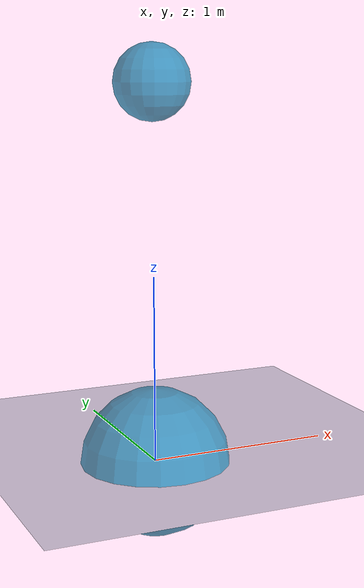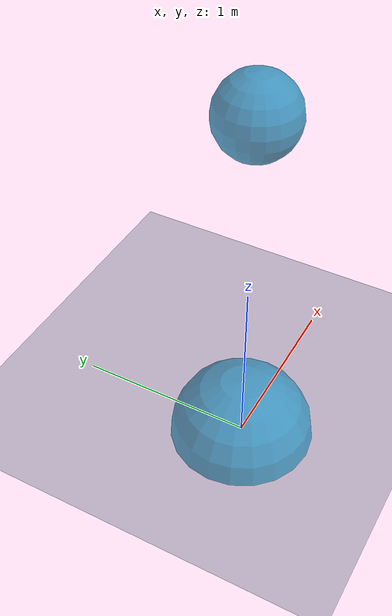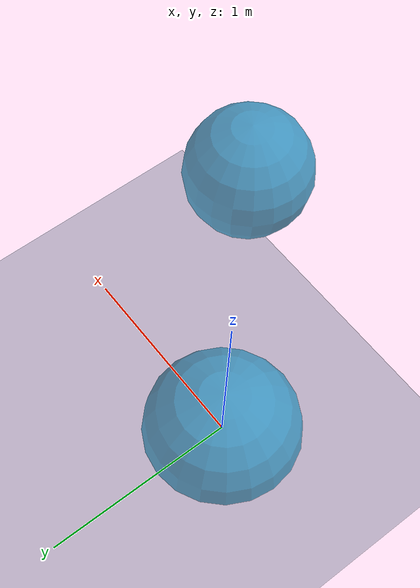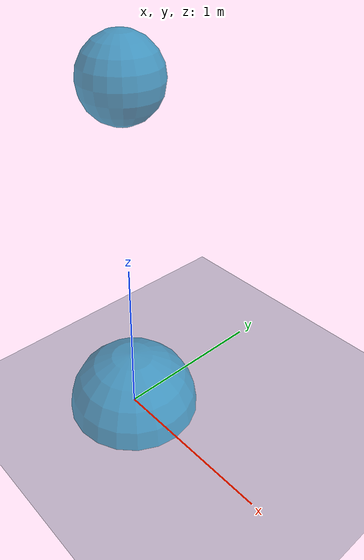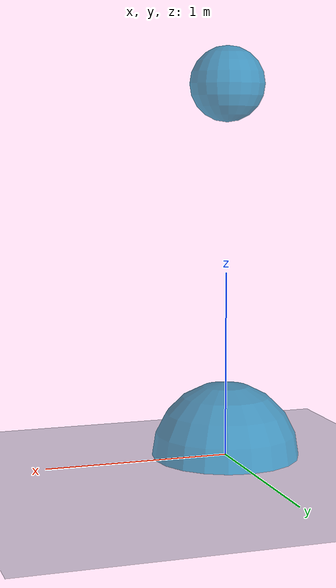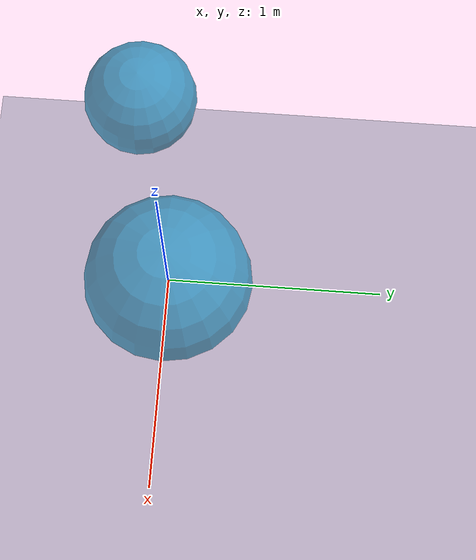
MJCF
<mujoco model="touch_sensor_test">
  <compiler eulerseq="XYZ" fitaabb="true" angle="radian"  autolimits="true"/>
  <option timestep="0.001" gravity="0 0 -9.81"/>

  <asset>
     <texture name="skybox" type="skybox" builtin="gradient" rgb1="0.2 0.3 0.4" rgb2="0 0 0" width="1000" height="1000" mark="random" random="0.001" markrgb="1 1 1"/>
     <texture type="2d" name="groundplane" builtin="checker" mark="edge" rgb1="0.2 0.3 0.4" rgb2="0.1 0.2 0.3" markrgb="0.8 0.8 0.8" width="1000" height="1000"/>
     <material name="groundplane" texture="groundplane" texuniform="true" texrepeat="5 5" reflectance="0.2"/>
  </asset>

  <worldbody>
    <geom name="floor" pos="0 0 0" size="0 0 1" type="plane" material="groundplane"/>
    <light directional="true" diffuse=".8 .8 .8" specular=".2 .2 .2" pos="0 0 5" dir="0 0 -1"/>

    <body name="object" pos="0 0 0">
      <joint type="free"/>
      <geom name="base_ball" type="sphere"  size="0.4"  rgba="0. 0.5 0.7 0.7" mass="10"/>
      <site name="touch_sensor_site_1_top" type="sphere" size="0.01" pos="0 0 -0.39" rgba="1 0 0 0.5"/>
      <site name="touch_sensor_site_1_bottom" type="sphere" size="0.01" pos="0 0 0.39" rgba="1 0 0 0.5"/>
    </body>

    <body name="probe" pos="0 0 2">
      <joint type="free"/>
      <geom name="fall_ball" type="sphere"  size="0.2"  rgba="0. 0.5 0.7 0.7" mass="10"/>
      <site name="touch_sensor_site_2_bottom" type="sphere" size="0.01" pos="0 0 -0.19" rgba="0 1 0 0.5"/>
    </body>
  </worldbody>

  <sensor>
      <touch name="touch_sensor_1_top" site="touch_sensor_site_1_top"/>
      <touch name="touch_sensor_1_bottom" site="touch_sensor_site_1_bottom"/>
      <touch name="touch_sensor_2_bottom" site="touch_sensor_site_2_bottom"/>
  </sensor>

</mujoco>
